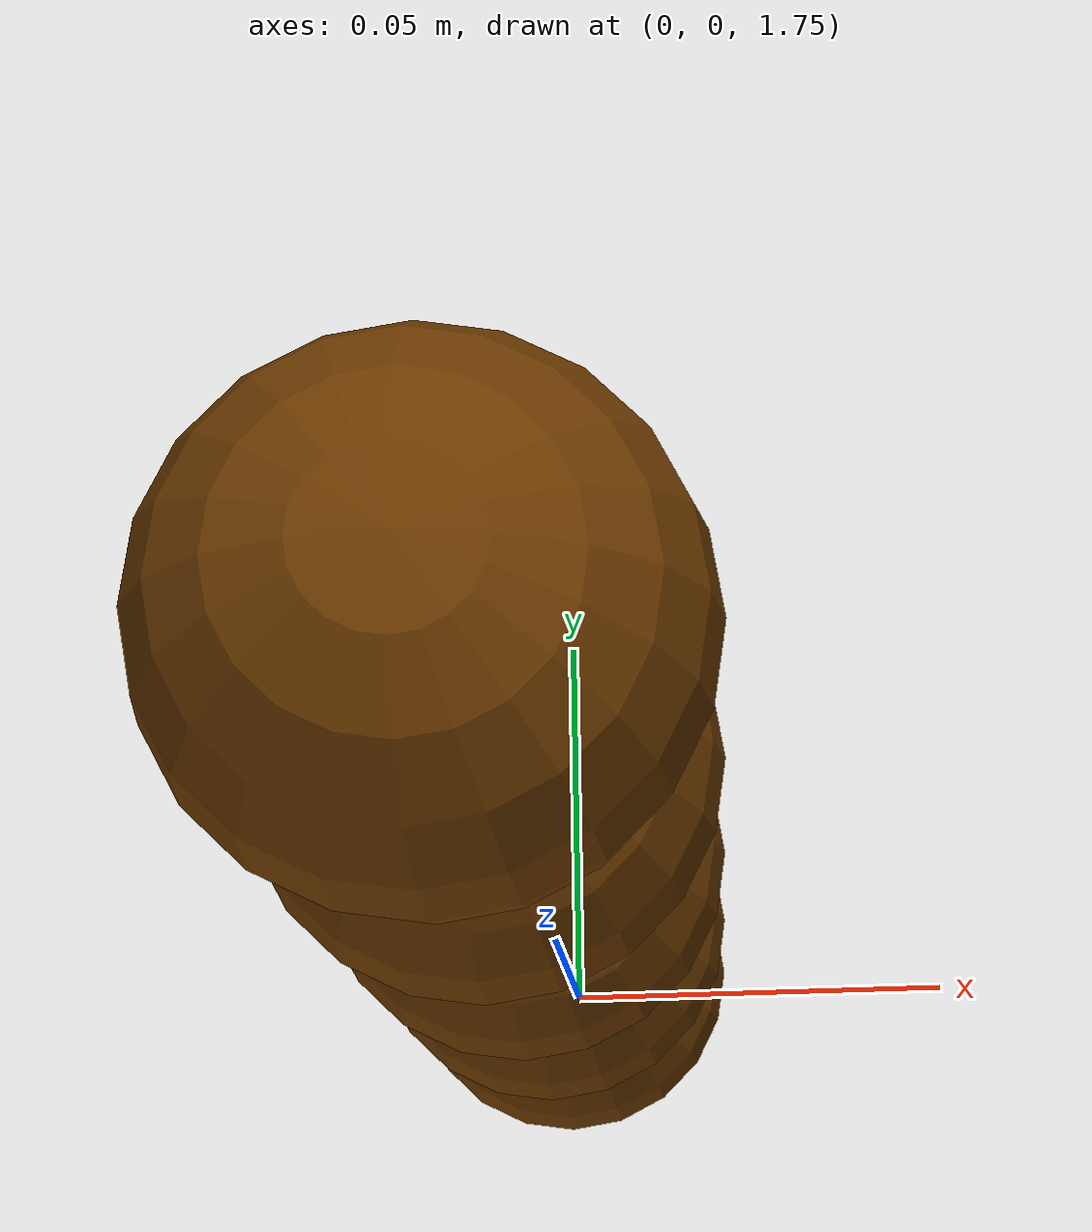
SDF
<?xml version="1.0"?>
<sdf version="1.8">
    <model name="wind_sock">
      <!-- Force Gazebo to ignore collisions between links in this specific model -->
      <self_collide>false</self_collide>
      <static>false</static>

      <!-- Anchor moved up to Z=1.97 -->
      <link name="anchor">
        <pose>0 0 1.97 0 0 0</pose>
        <inertial>
          <mass>1.0</mass>
          <inertia>
            <ixx>0.00087</ixx>
            <ixy>0.0</ixy>
            <ixz>0.0</ixz>
            <iyy>0.00087</iyy>
            <iyz>0.0</iyz>
            <izz>0.00166</izz>
          </inertia>
        </inertial>
        <collision name="collision">
          <geometry>
            <box>
              <size>0.1 0.1 0.02</size>
            </box>
          </geometry>
        </collision>
      </link>
      <joint name="anchor_joint" type="fixed">
        <parent>world</parent>
        <child>anchor</child>
      </joint>

      <!-- SPHERE 1 -->
      <link name="sphere_1">
        <pose>0 0 1.93 0 0 0</pose>
        <enable_wind>true</enable_wind>
        <inertial>
          <mass>0.0005</mass>
          <inertia>
            <ixx>5.0e-5</ixx>
            <ixy>0.0</ixy>
            <ixz>0.0</ixz>
            <iyy>5.0e-5</iyy>
            <iyz>0.0</iyz>
            <izz>5.0e-5</izz>
          </inertia>
        </inertial>
        <collision name="collision">
          <geometry>
            <sphere>
              <radius>0.02</radius>
            </sphere>
          </geometry>
        </collision>
        <visual name="visual">
          <geometry>
            <sphere>
              <radius>0.02</radius>
            </sphere>
          </geometry>
          <material>
            <ambient>1.0 0 0 1.0</ambient>
            <diffuse>.421 0.225 0.0 1.0</diffuse>
            <specular>1.0 0 0 1.0</specular>
          </material>
        </visual>
      </link>
      <joint name="sphere_1_joint" type="universal">
        <parent>anchor</parent>
        <child>sphere_1</child>
        <axis>
          <xyz>1 0 0</xyz>
          <limit><lower>-1.5</lower><upper>1.5</upper></limit>

        </axis>
        <axis2>
          <xyz>0 1 0</xyz>
          <limit><lower>-1.5</lower><upper>1.5</upper></limit>

        </axis2>

      </joint>

      <!-- SPHERE 2 -->
      <link name="sphere_2">
        <pose>0 0 1.89 0 0 0</pose>
        <enable_wind>true</enable_wind>
        <inertial>
          <mass>0.0005</mass>
          <inertia>
            <ixx>5.0e-5</ixx>
            <ixy>0.0</ixy>
            <ixz>0.0</ixz>
            <iyy>5.0e-5</iyy>
            <iyz>0.0</iyz>
            <izz>5.0e-5</izz>
          </inertia>
        </inertial>
        <collision name="collision">
          <geometry>
            <sphere>
              <radius>0.02</radius>
            </sphere>
          </geometry>
        </collision>
        <visual name="visual">
          <geometry>
            <sphere>
              <radius>0.02</radius>
            </sphere>
          </geometry>
          <material>
            <ambient>1.0 0 0 1.0</ambient>
            <diffuse>.421 0.225 0.0 1.0</diffuse>
            <specular>1.0 0 0 1.0</specular>
          </material>
        </visual>
      </link>
      <joint name="sphere_2_joint" type="universal">
        <parent>sphere_1</parent>
        <child>sphere_2</child>
        <axis>
          <xyz>1 0 0</xyz>
          <limit><lower>-1.5</lower><upper>1.5</upper></limit>

        </axis>
        <axis2>
          <xyz>0 1 0</xyz>
          <limit><lower>-1.5</lower><upper>1.5</upper></limit>

        </axis2>

      </joint>

      <!-- SPHERE 3 -->
      <link name="sphere_3">
        <pose>0 0 1.85 0 0 0</pose>
        <enable_wind>true</enable_wind>
        <inertial>
          <mass>0.0005</mass>
          <inertia>
            <ixx>5.0e-5</ixx>
            <ixy>0.0</ixy>
            <ixz>0.0</ixz>
            <iyy>5.0e-5</iyy>
            <iyz>0.0</iyz>
            <izz>5.0e-5</izz>
          </inertia>
        </inertial>
        <collision name="collision">
          <geometry>
            <sphere>
              <radius>0.02</radius>
            </sphere>
          </geometry>
        </collision>
        <visual name="visual">
          <geometry>
            <sphere>
              <radius>0.02</radius>
            </sphere>
          </geometry>
          <material>
            <ambient>1.0 0 0 1.0</ambient>
            <diffuse>.421 0.225 0.0 1.0</diffuse>
            <specular>1.0 0 0 1.0</specular>
          </material>
        </visual>
      </link>
      <joint name="sphere_3_joint" type="universal">
        <parent>sphere_2</parent>
        <child>sphere_3</child>
        <axis>
          <xyz>1 0 0</xyz>
          <limit><lower>-1.5</lower><upper>1.5</upper></limit>

        </axis>
        <axis2>
          <xyz>0 1 0</xyz>
          <limit><lower>-1.5</lower><upper>1.5</upper></limit>

        </axis2>

      </joint>

      <!-- SPHERE 4 -->
      <link name="sphere_4">
        <pose>0 0 1.81 0 0 0</pose>
        <enable_wind>true</enable_wind>
        <inertial>
          <mass>0.0005</mass>
          <inertia>
            <ixx>5.0e-5</ixx>
            <ixy>0.0</ixy>
            <ixz>0.0</ixz>
            <iyy>5.0e-5</iyy>
            <iyz>0.0</iyz>
            <izz>5.0e-5</izz>
          </inertia>
        </inertial>
        <collision name="collision">
          <geometry>
            <sphere>
              <radius>0.02</radius>
            </sphere>
          </geometry>
        </collision>
        <visual name="visual">
          <geometry>
            <sphere>
              <radius>0.02</radius>
            </sphere>
          </geometry>
          <material>
            <ambient>1.0 0 0 1.0</ambient>
            <diffuse>.421 0.225 0.0 1.0</diffuse>
            <specular>1.0 0 0 1.0</specular>
          </material>
        </visual>
      </link>
      <joint name="sphere_4_joint" type="universal">
        <parent>sphere_3</parent>
        <child>sphere_4</child>
        <axis>
          <xyz>1 0 0</xyz>
          <limit><lower>-1.5</lower><upper>1.5</upper></limit>

        </axis>
        <axis2>
          <xyz>0 1 0</xyz>
          <limit><lower>-1.5</lower><upper>1.5</upper></limit>

        </axis2>

      </joint>

      <!-- SPHERE 5 -->
      <link name="sphere_5">
        <pose>0 0 1.77 0 0 0</pose>
        <enable_wind>true</enable_wind>
        <inertial>
          <mass>0.0005</mass>
          <inertia>
            <ixx>5.0e-5</ixx>
            <ixy>0.0</ixy>
            <ixz>0.0</ixz>
            <iyy>5.0e-5</iyy>
            <iyz>0.0</iyz>
            <izz>5.0e-5</izz>
          </inertia>
        </inertial>
        <collision name="collision">
          <geometry>
            <sphere>
              <radius>0.02</radius>
            </sphere>
          </geometry>
        </collision>
        <visual name="visual">
          <geometry>
            <sphere>
              <radius>0.02</radius>
            </sphere>
          </geometry>
          <material>
            <ambient>1.0 0 0 1.0</ambient>
            <diffuse>.421 0.225 0.0 1.0</diffuse>
            <specular>1.0 0 0 1.0</specular>
          </material>
        </visual>
      </link>
      <joint name="sphere_5_joint" type="universal">
        <parent>sphere_4</parent>
        <child>sphere_5</child>
        <axis>
          <xyz>1 0 0</xyz>
          <limit><lower>-1.5</lower><upper>1.5</upper></limit>

        </axis>
        <axis2>
          <xyz>0 1 0</xyz>
          <limit><lower>-1.5</lower><upper>1.5</upper></limit>

        </axis2>

      </joint>
    </model>
</sdf>
